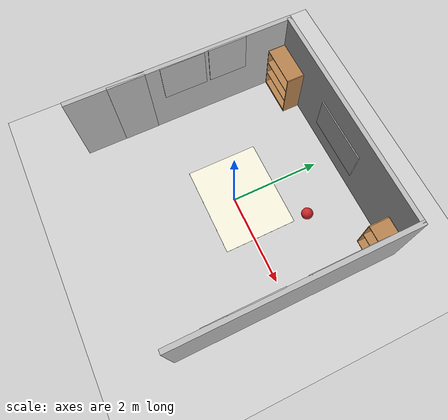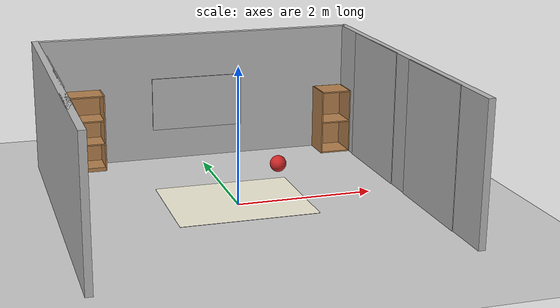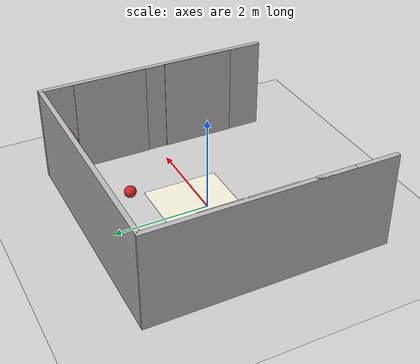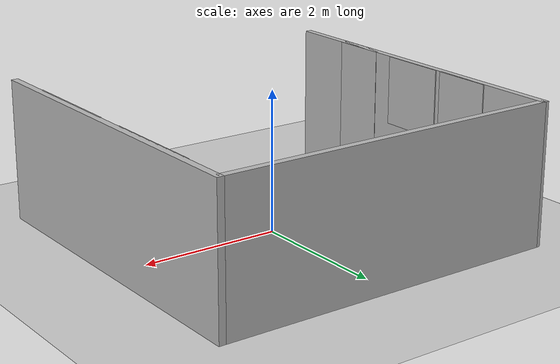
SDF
<sdf version="1.6">
 <world name="default">
  <light name="sun" type="directional">
   <pose>0 0 10 0 -0 0</pose>
   <diffuse>0.8 0.8 0.8 1</diffuse>
   <specular>0.2 0.2 0.2 1</specular>
   <attenuation>
    <range>1000</range>
    <constant>0.9</constant>
    <linear>0.01</linear>
    <quadratic>0.001</quadratic>
   </attenuation>
   <direction>-0.5 0.1 -0.9</direction>
   <spot><inner_angle>0</inner_angle><outer_angle>0</outer_angle><falloff>0</falloff></spot>
  </light>
  <model name="ground_plane">
   <static>1</static>
   <link name="link">
    <collision name="collision">
     <geometry><plane><normal>0 0 1</normal><size>100 100</size></plane></geometry>
     <surface>
      <contact><collide_bitmask>65535</collide_bitmask></contact>
      <friction><ode><mu>100</mu><mu2>50</mu2></ode></friction>
     </surface>
    </collision>
    <visual name="visual">
     <cast_shadows>0</cast_shadows>
     <geometry><plane><normal>0 0 1</normal><size>1 1</size></plane></geometry>
     <material>
      <script><uri>file://media/materials/scripts/gazebo.material</uri><name>Gazebo/Grey</name></script>
     </material>
    </visual>
   </link>
  </model>
  <gravity>0 0 -9.8</gravity>
  <magnetic_field>6e-06 2.3e-05 -4.2e-05</magnetic_field>
  <atmosphere type="adiabatic"/>
  <physics type="ode">
   <max_step_size>0.001</max_step_size>
   <real_time_factor>1</real_time_factor>
   <real_time_update_rate>1000</real_time_update_rate>
  </physics>
  <scene><ambient>0.4 0.4 0.4 1</ambient><background>0.7 0.7 0.7 1</background><shadows>1</shadows></scene>
  <audio><device>default</device></audio>
  <spherical_coordinates>
   <surface_model>EARTH_WGS84</surface_model>
   <latitude_deg>0</latitude_deg>
   <longitude_deg>0</longitude_deg>
   <elevation>0</elevation>
   <heading_deg>0</heading_deg>
  </spherical_coordinates>
  <model name="Bookshelf">
   <static>1</static>
   <link name="link">
    <inertial><mass>1</mass></inertial>
    <collision name="back">
     <pose>0 0.005 0.6 0 -0 0</pose>
     <geometry><box><size>0.9 0.01 1.2</size></box></geometry>
    </collision>
    <visual name="visual1">
     <pose>0 0.005 0.6 0 -0 0</pose>
     <geometry><box><size>0.9 0.01 1.2</size></box></geometry>
     <material>
      <diffuse>1 1 1 1</diffuse>
      <script><uri>file://media/materials/scripts/gazebo.material</uri><name>Gazebo/Wood</name></script>
      <pbr>
       <metal>
        <albedo_map>https://fuel.ignitionrobotics.org/1.0/openrobotics/models/bookshelf/3/files/bookshelf_diffuse.jpg</albedo_map>
       </metal>
      </pbr>
     </material>
    </visual>
    <collision name="left_side">
     <pose>0.45 -0.195 0.6 0 -0 0</pose>
     <geometry><box><size>0.02 0.4 1.2</size></box></geometry>
    </collision>
    <visual name="visual2">
     <pose>0.45 -0.195 0.6 0 -0 0</pose>
     <geometry><box><size>0.02 0.4 1.2</size></box></geometry>
     <material>
      <diffuse>1 1 1 1</diffuse>
      <script><uri>file://media/materials/scripts/gazebo.material</uri><name>Gazebo/Wood</name></script>
      <pbr>
       <metal>
        <albedo_map>https://fuel.ignitionrobotics.org/1.0/openrobotics/models/bookshelf/3/files/bookshelf_diffuse.jpg</albedo_map>
       </metal>
      </pbr>
     </material>
    </visual>
    <collision name="right_side">
     <pose>-0.45 -0.195 0.6 0 -0 0</pose>
     <geometry><box><size>0.02 0.4 1.2</size></box></geometry>
    </collision>
    <visual name="visual3">
     <pose>-0.45 -0.195 0.6 0 -0 0</pose>
     <geometry><box><size>0.02 0.4 1.2</size></box></geometry>
     <material>
      <diffuse>1 1 1 1</diffuse>
      <script><uri>file://media/materials/scripts/gazebo.material</uri><name>Gazebo/Wood</name></script>
      <pbr>
       <metal>
        <albedo_map>https://fuel.ignitionrobotics.org/1.0/openrobotics/models/bookshelf/3/files/bookshelf_diffuse.jpg</albedo_map>
       </metal>
      </pbr>
     </material>
    </visual>
    <collision name="bottom">
     <pose>0 -0.195 0.03 0 -0 0</pose>
     <geometry><box><size>0.88 0.4 0.06</size></box></geometry>
    </collision>
    <visual name="visual4">
     <pose>0 -0.195 0.03 0 -0 0</pose>
     <geometry><box><size>0.88 0.4 0.06</size></box></geometry>
     <material>
      <diffuse>1 1 1 1</diffuse>
      <script><uri>file://media/materials/scripts/gazebo.material</uri><name>Gazebo/Wood</name></script>
      <pbr>
       <metal>
        <albedo_map>https://fuel.ignitionrobotics.org/1.0/openrobotics/models/bookshelf/3/files/bookshelf_diffuse.jpg</albedo_map>
       </metal>
      </pbr>
     </material>
    </visual>
    <collision name="top">
     <pose>0 -0.195 1.19 0 -0 0</pose>
     <geometry><box><size>0.88 0.4 0.02</size></box></geometry>
    </collision>
    <visual name="visual5">
     <pose>0 -0.195 1.19 0 -0 0</pose>
     <geometry><box><size>0.88 0.4 0.02</size></box></geometry>
     <material>
      <diffuse>1 1 1 1</diffuse>
      <script><uri>file://media/materials/scripts/gazebo.material</uri><name>Gazebo/Wood</name></script>
      <pbr>
       <metal>
        <albedo_map>https://fuel.ignitionrobotics.org/1.0/openrobotics/models/bookshelf/3/files/bookshelf_diffuse.jpg</albedo_map>
       </metal>
      </pbr>
     </material>
    </visual>
    <collision name="low_shelf">
     <pose>0 -0.195 0.43 0 -0 0</pose>
     <geometry><box><size>0.88 0.4 0.02</size></box></geometry>
    </collision>
    <visual name="visual6">
     <pose>0 -0.195 0.43 0 -0 0</pose>
     <geometry><box><size>0.88 0.4 0.02</size></box></geometry>
     <material>
      <diffuse>1 1 1 1</diffuse>
      <script><uri>file://media/materials/scripts/gazebo.material</uri><name>Gazebo/Wood</name></script>
      <pbr>
       <metal>
        <albedo_map>https://fuel.ignitionrobotics.org/1.0/openrobotics/models/bookshelf/3/files/bookshelf_diffuse.jpg</albedo_map>
       </metal>
      </pbr>
     </material>
    </visual>
    <collision name="high_shelf">
     <pose>0 -0.195 0.8 0 -0 0</pose>
     <geometry><box><size>0.88 0.4 0.02</size></box></geometry>
    </collision>
    <visual name="visual7">
     <pose>0 -0.195 0.8 0 -0 0</pose>
     <geometry><box><size>0.88 0.4 0.02</size></box></geometry>
     <material>
      <diffuse>1 1 1 1</diffuse>
      <script><uri>file://media/materials/scripts/gazebo.material</uri><name>Gazebo/Wood</name></script>
      <pbr>
       <metal>
        <albedo_map>https://fuel.ignitionrobotics.org/1.0/openrobotics/models/bookshelf/3/files/bookshelf_diffuse.jpg</albedo_map>
       </metal>
      </pbr>
     </material>
    </visual>
   </link>
   <pose>-2 2.4 0 0 -0 0</pose>
  </model>
  <model name="cabinet">
   <static>1</static>
   <link name="cabinet_bottom_plate">
    <inertial>
     <pose>0 0 -1 0 -0 0</pose>
     <inertia><ixx>2.05</ixx><ixy>0</ixy><ixz>0</ixz><iyy>2.05</iyy><iyz>0</iyz><izz>2.05</izz></inertia>
     <mass>25</mass>
    </inertial>
    <collision name="cabinet_bottom_plate_geom">
     <pose>0 0 0.01 0 -0 0</pose>
     <geometry><box><size>0.45 0.45 0.02</size></box></geometry>
    </collision>
    <visual name="cabinet_bottom_plate_geom_visual">
     <pose>0 0 0.01 0 -0 0</pose>
     <geometry><box><size>0.45 0.45 0.02</size></box></geometry>
     <material>
      <script><uri>file://media/materials/scripts/gazebo.material</uri><name>Gazebo/Wood</name></script>
     </material>
    </visual>
    <collision name="cabinet_bottom_plate_geom_cabinet_back_plate">
     <pose>0.235 0 0.51 0 -0 0</pose>
     <geometry><box><size>0.02 0.45 1.02</size></box></geometry>
    </collision>
    <visual name="cabinet_bottom_plate_geom_cabinet_back_plate_visual">
     <pose>0.235 0 0.51 0 -0 0</pose>
     <geometry><box><size>0.02 0.45 1.02</size></box></geometry>
     <material>
      <script><uri>file://media/materials/scripts/gazebo.material</uri><name>Gazebo/Wood</name></script>
     </material>
    </visual>
    <collision name="cabinet_bottom_plate_geom_cabinet_left_plate">
     <pose>0 0.235 0.51 0 -0 0</pose>
     <geometry><box><size>0.45 0.02 1.02</size></box></geometry>
    </collision>
    <visual name="cabinet_bottom_plate_geom_cabinet_left_plate_visual">
     <pose>0 0.235 0.51 0 -0 0</pose>
     <geometry><box><size>0.45 0.02 1.02</size></box></geometry>
     <material>
      <script><uri>file://media/materials/scripts/gazebo.material</uri><name>Gazebo/Wood</name></script>
     </material>
    </visual>
    <collision name="cabinet_bottom_plate_geom_cabinet_middle_plate">
     <pose>0 0 0.51 0 -0 0</pose>
     <geometry><box><size>0.45 0.45 0.02</size></box></geometry>
    </collision>
    <visual name="cabinet_bottom_plate_geom_cabinet_middle_plate_visual">
     <pose>0 0 0.51 0 -0 0</pose>
     <geometry><box><size>0.45 0.45 0.02</size></box></geometry>
     <material>
      <script><uri>file://media/materials/scripts/gazebo.material</uri><name>Gazebo/Wood</name></script>
     </material>
    </visual>
    <collision name="cabinet_bottom_plate_geom_cabinet_right_plate">
     <pose>0 -0.235 0.51 0 -0 0</pose>
     <geometry><box><size>0.45 0.02 1.02</size></box></geometry>
    </collision>
    <visual name="cabinet_bottom_plate_geom_cabinet_right_plate_visual">
     <pose>0 -0.235 0.51 0 -0 0</pose>
     <geometry><box><size>0.45 0.02 1.02</size></box></geometry>
     <material>
      <script><uri>file://media/materials/scripts/gazebo.material</uri><name>Gazebo/Wood</name></script>
     </material>
    </visual>
    <collision name="cabinet_bottom_plate_geom_cabinet_top_plate">
     <pose>0 0 1.01 0 -0 0</pose>
     <geometry><box><size>0.45 0.45 0.02</size></box></geometry>
    </collision>
    <visual name="cabinet_bottom_plate_geom_cabinet_top_plate_visual">
     <pose>0 0 1.01 0 -0 0</pose>
     <geometry><box><size>0.45 0.45 0.02</size></box></geometry>
     <material>
      <script><uri>file://media/materials/scripts/gazebo.material</uri><name>Gazebo/Wood</name></script>
     </material>
    </visual>
   </link>
   <pose>2.21 2.17 0 0 -0 1.5707</pose>
  </model>
  <model name="makerspet_poster">
   <link name="link">
    <visual name="visual">
     <geometry><box><size>0.03 0.85714 1</size></box></geometry>
     <material>
      <script>
       <uri>https://fuel.ignitionrobotics.org/1.0/makerspet/models/makerspet_poster/1/files/material/script</uri>
       <uri>https://fuel.ignitionrobotics.org/1.0/makerspet/models/makerspet_poster/1/files/material/textures</uri>
       <name>Custom/makerspet</name>
      </script>
     </material>
    </visual>
   </link>
   <static>1</static>
   <pose>-2.45 1 1.5 0 -0 0</pose>
  </model>
  <model name="kaiaai_poster">
   <link name="link">
    <visual name="visual">
     <geometry><box><size>0.03 0.9782 1</size></box></geometry>
     <material>
      <script>
       <uri>https://fuel.ignitionrobotics.org/1.0/makerspet/models/kaiaai_poster/1/files/material/script</uri>
       <uri>https://fuel.ignitionrobotics.org/1.0/makerspet/models/kaiaai_poster/1/files/material/textures</uri>
       <name>Custom/kaiaai</name>
      </script>
     </material>
    </visual>
   </link>
   <static>1</static>
   <pose>-2.45 0 1.5 0 -0 0</pose>
  </model>
  <model name="door_08x2m_0">
   <link name="link">
    <visual name="visual">
     <geometry><box><size>0.1 0.8 2</size></box></geometry>
     <material>
      <script>
       <uri>https://fuel.ignitionrobotics.org/1.0/makerspet/models/door_08x2m/1/files/material/script</uri>
       <uri>https://fuel.ignitionrobotics.org/1.0/makerspet/models/door_08x2m/1/files/material/textures</uri>
       <name>Custom/door_08x2m</name>
      </script>
     </material>
    </visual>
   </link>
   <static>1</static>
   <pose>-2.495 -1.2 1 0 -0 0</pose>
  </model>
  <model name="living_room"><static>0</static><pose>-1.83596 1.40391 0 0 -0 0</pose></model>
  <model name="room_wall_2x5">
   <link name="link">
    <visual name="visual">
     <geometry><box><size>0.1 5 2</size></box></geometry>
     <material>
      <script>
       <uri>https://fuel.ignitionrobotics.org/1.0/makerspet/models/room_wall_2x5m/1/files/material/script</uri>
       <uri>https://fuel.ignitionrobotics.org/1.0/makerspet/models/room_wall_2x5m/1/files/material/textures</uri>
       <name>Custom/room_wall_2x5</name>
      </script>
     </material>
    </visual>
    <collision name="collision"><geometry><box><size>0.1 5 2</size></box></geometry></collision>
   </link>
   <static>1</static>
   <pose>-2.5 0 1 0 -0 0</pose>
  </model>
  <model name="room_wall_2x5_0">
   <link name="link">
    <visual name="visual">
     <geometry><box><size>0.1 5 2</size></box></geometry>
     <material>
      <script>
       <uri>https://fuel.ignitionrobotics.org/1.0/makerspet/models/room_wall_2x5m/1/files/material/script</uri>
       <uri>https://fuel.ignitionrobotics.org/1.0/makerspet/models/room_wall_2x5m/1/files/material/textures</uri>
       <name>Custom/room_wall_2x5</name>
      </script>
     </material>
    </visual>
    <collision name="collision"><geometry><box><size>0.1 5 2</size></box></geometry></collision>
   </link>
   <static>1</static>
   <pose>2.5 0 1 0 -0 0</pose>
  </model>
  <model name="room_wall_2x5_2">
   <link name="link">
    <visual name="visual">
     <geometry><box><size>0.1 5 2</size></box></geometry>
     <material>
      <script>
       <uri>https://fuel.ignitionrobotics.org/1.0/makerspet/models/room_wall_2x5m/1/files/material/script</uri>
       <uri>https://fuel.ignitionrobotics.org/1.0/makerspet/models/room_wall_2x5m/1/files/material/textures</uri>
       <name>Custom/room_wall_2x5</name>
      </script>
     </material>
    </visual>
    <collision name="collision"><geometry><box><size>0.1 5 2</size></box></geometry></collision>
   </link>
   <static>1</static>
   <pose>0 2.45 1 0 -0 1.5707</pose>
  </model>
  <model name="rug_ivory_2m_0">
   <link name="link">
    <visual name="visual">
     <geometry><box><size>1.6 2 0.005</size></box></geometry>
     <material>
      <script>
       <uri>https://fuel.ignitionrobotics.org/1.0/makerspet/models/rug_ivory_2m/1/files/material/script</uri>
       <uri>https://fuel.ignitionrobotics.org/1.0/makerspet/models/rug_ivory_2m/1/files/material/textures</uri>
       <name>Custom/rug_ivory_2m</name>
      </script>
     </material>
    </visual>
   </link>
   <static>1</static>
   <pose>0 0.15 0 0 -0 1.5707</pose>
  </model>
  <model name="window_curtains">
   <link name="link">
    <visual name="visual">
     <geometry><box><size>0.02 1.5676 2</size></box></geometry>
     <material>
      <script>
       <uri>https://fuel.ignitionrobotics.org/1.0/makerspet/models/window_curtains/1/files/material/script</uri>
       <uri>https://fuel.ignitionrobotics.org/1.0/makerspet/models/window_curtains/1/files/material/textures</uri>
       <name>Custom/window_curtains</name>
      </script>
      <emissive>0 1 0 1</emissive>
     </material>
    </visual>
   </link>
   <static>1</static>
   <pose>2.45 1 1 0 -0 0</pose>
  </model>
  <model name="window_curtains_0">
   <link name="link">
    <visual name="visual">
     <geometry><box><size>0.02 1.5676 2</size></box></geometry>
     <material>
      <script>
       <uri>https://fuel.ignitionrobotics.org/1.0/makerspet/models/window_curtains/1/files/material/script</uri>
       <uri>https://fuel.ignitionrobotics.org/1.0/makerspet/models/window_curtains/1/files/material/textures</uri>
       <name>Custom/window_curtains</name>
      </script>
      <emissive>0 1 0 1</emissive>
     </material>
    </visual>
   </link>
   <static>1</static>
   <pose>2.45 -1 1 0 -0 0</pose>
  </model>
  <model name="red_ball_10in">
   <pose>1 1.25 0.127 0 -0 0</pose>
   <link name="link">
    <inertial>
     <mass>0.213</mass>
     <inertia>
      <ixx>0.00322667</ixx>
      <ixy>0</ixy>
      <ixz>0</ixz>
      <iyy>0.00322667</iyy>
      <iyz>0</iyz>
      <izz>0.00322667</izz>
     </inertia>
    </inertial>
    <visual name="visual">
     <geometry><sphere><radius>0.127</radius></sphere></geometry>
     <material>
      <script><uri>file://media/materials/scripts/gazebo.material</uri><name>Gazebo/Red</name></script>
     </material>
    </visual>
    <collision name="collision">
     <geometry><sphere><radius>0.127</radius></sphere></geometry>
     <surface>
      <bounce><restitution_coefficient>0.15937</restitution_coefficient><threshold>0</threshold></bounce>
      <contact><ode><max_vel>100</max_vel><min_depth>0.001</min_depth></ode></contact>
     </surface>
    </collision>
   </link>
  </model>
  <model name="tv_65in_emissive">
   <link name="link">
    <visual name="visual">
     <geometry><box><size>0.05 1.45 0.83</size></box></geometry>
     <material>
      <script>
       <uri>https://fuel.ignitionrobotics.org/1.0/makerspet/models/tv_65in_emissive/4/files/material/script</uri>
       <uri>https://fuel.ignitionrobotics.org/1.0/makerspet/models/tv_65in_emissive/4/files/material/textures</uri>
       <name>Custom/tv_emissive</name>
      </script>
     </material>
    </visual>
   </link>
   <static>1</static>
   <pose>0 2.4 0.9 0 -0 1.5707</pose>
  </model>
 </world>
</sdf>
